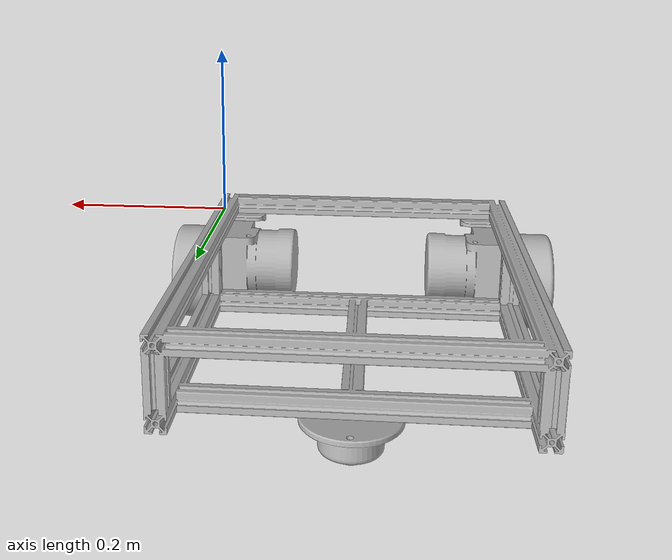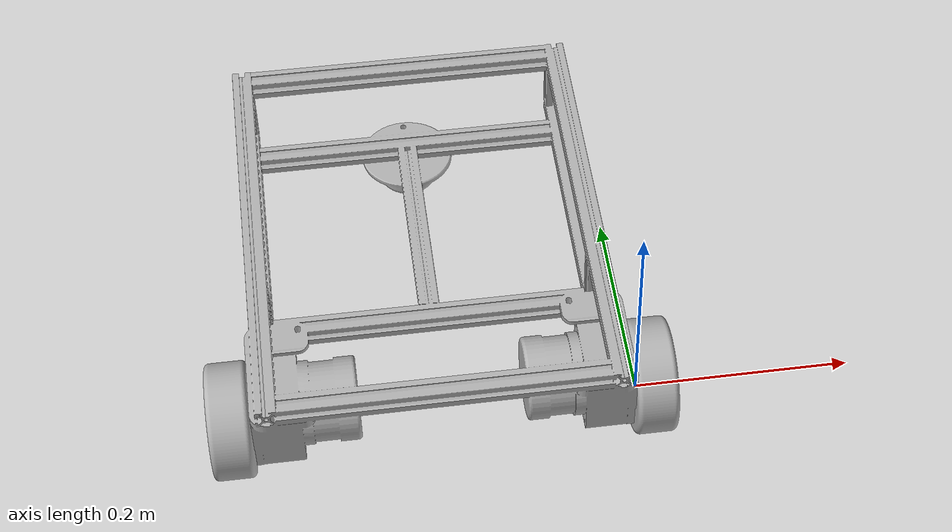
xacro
<?xml version="1.0" ?>
<robot name="cartrasche" xmlns:xacro="http://www.ros.org/wiki/xacro">

<xacro:include filename="$(find cartrasche_description)/urdf/materials.xacro" />
<xacro:include filename="$(find cartrasche_description)/urdf/cartrasche.trans" />
<xacro:include filename="$(find cartrasche_description)/urdf/cartrasche.gazebo" />
<link name="base_link">
  <inertial>
    <origin xyz="-0.17500000000000093 0.1465379545676244 -0.04167420563757363" rpy="0 0 0"/>
    <mass value="14.854275644982799"/>
    <inertia ixx="0.311009" iyy="0.269977" izz="0.551767" ixy="0.0" iyz="0.004993" ixz="-0.0"/>
  </inertial>
  <visual>
    <origin xyz="0 0 0" rpy="0 0 0"/>
    <geometry>
      <mesh filename="package://cartrasche_description/meshes/base_link.stl" scale="0.001 0.001 0.001"/>
    </geometry>
    <material name="silver"/>
  </visual>
  <collision>
    <origin xyz="0 0 0" rpy="0 0 0"/>
    <geometry>
      <mesh filename="package://cartrasche_description/meshes/base_link.stl" scale="0.001 0.001 0.001"/>
    </geometry>
  </collision>
</link>

<link name="Wheel_L_1">
  <inertial>
    <origin xyz="-0.004962223004344377 3.726186026398182e-15 6.522560269672795e-16" rpy="0 0 0"/>
    <mass value="3.060084322980661"/>
    <inertia ixx="0.004797" iyy="0.0028" izz="0.0028" ixy="0.0" iyz="0.0" ixz="0.0"/>
  </inertial>
  <visual>
    <origin xyz="-0.032 -0.06 0.063" rpy="0 0 0"/>
    <geometry>
      <mesh filename="package://cartrasche_description/meshes/Wheel_L_1.stl" scale="0.001 0.001 0.001"/>
    </geometry>
    <material name="silver"/>
  </visual>
  <collision>
    <origin xyz="-0.032 -0.06 0.063" rpy="0 0 0"/>
    <geometry>
      <mesh filename="package://cartrasche_description/meshes/Wheel_L_1.stl" scale="0.001 0.001 0.001"/>
    </geometry>
  </collision>
</link>

<link name="Wheel_R_1">
  <inertial>
    <origin xyz="0.004962223004343791 -4.198030811863873e-15 1.3877787807814457e-17" rpy="0 0 0"/>
    <mass value="3.060084322980661"/>
    <inertia ixx="0.004797" iyy="0.0028" izz="0.0028" ixy="0.0" iyz="-0.0" ixz="0.0"/>
  </inertial>
  <visual>
    <origin xyz="0.382 -0.06 0.063" rpy="0 0 0"/>
    <geometry>
      <mesh filename="package://cartrasche_description/meshes/Wheel_R_1.stl" scale="0.001 0.001 0.001"/>
    </geometry>
    <material name="silver"/>
  </visual>
  <collision>
    <origin xyz="0.382 -0.06 0.063" rpy="0 0 0"/>
    <geometry>
      <mesh filename="package://cartrasche_description/meshes/Wheel_R_1.stl" scale="0.001 0.001 0.001"/>
    </geometry>
  </collision>
</link>

<joint name="Rotate1" type="continuous">
  <origin xyz="0.032 0.06 -0.063" rpy="0 0 0"/>
  <parent link="base_link"/>
  <child link="Wheel_L_1"/>
  <axis xyz="1.0 0.0 0.0"/>
</joint>

<joint name="Rotate2" type="continuous">
  <origin xyz="-0.382 0.06 -0.063" rpy="0 0 0"/>
  <parent link="base_link"/>
  <child link="Wheel_R_1"/>
  <axis xyz="-1.0 -0.0 0.0"/>
</joint>

</robot>

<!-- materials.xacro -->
<robot name="cartrasche" xmlns:xacro="http://www.ros.org/wiki/xacro" >

<material name="silver">
  <color rgba="0.700 0.700 0.700 1.000"/>
</material>

</robot>

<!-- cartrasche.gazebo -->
<robot name="cartrasche" xmlns:xacro="http://www.ros.org/wiki/xacro" >

<xacro:property name="body_color" value="Gazebo/Silver" />

<gazebo>
  <plugin name="control" filename="libgazebo_ros_control.so"/>
</gazebo>
<gazebo reference="base_link">
  <material>${body_color}</material>
  <mu1>0.2</mu1>
  <mu2>0.2</mu2>
  <selfCollide>true</selfCollide>
  <gravity>true</gravity>
</gazebo>

<gazebo reference="Wheel_L_1">
  <material>${body_color}</material>
  <mu1>0.2</mu1>
  <mu2>0.2</mu2>
  <selfCollide>true</selfCollide>
</gazebo>

<gazebo reference="Wheel_R_1">
  <material>${body_color}</material>
  <mu1>0.2</mu1>
  <mu2>0.2</mu2>
  <selfCollide>true</selfCollide>
</gazebo>

</robot>
